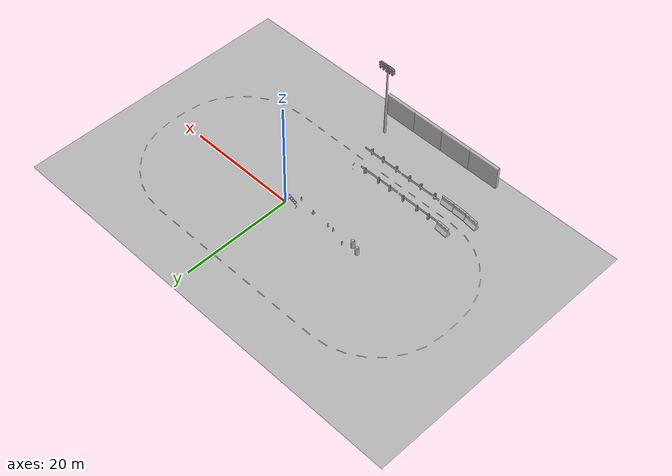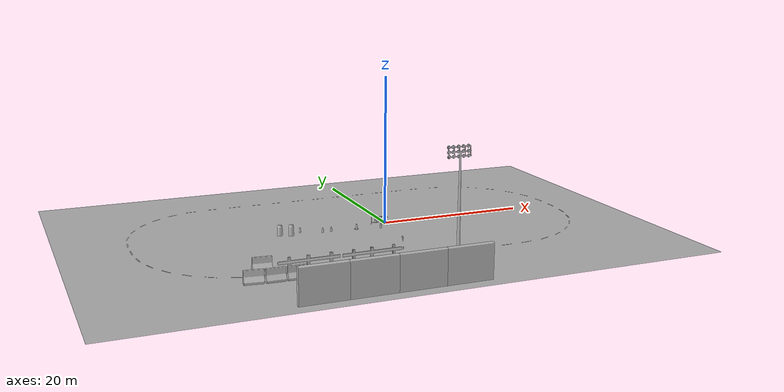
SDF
<sdf version="1.6">
 <world name="default">
  <model name="aws_robomaker_racetrack_CrashworthBucket_01_02">
   <link name="aws_CrashworthBucket_01::body">
    <inertial>
     <mass>5</mass>
     <inertia><ixx>1</ixx><ixy>0</ixy><ixz>0</ixz><iyy>1</iyy><iyz>0</iyz><izz>1</izz></inertia>
    </inertial>
    <visual name="visual">
     <geometry>
      <mesh>
       <uri>file://models/aws_robomaker_racetrack_CrashworthBucket_01/meshes/aws_CrashworthBucket_01_visual.DAE</uri>
      </mesh>
     </geometry>
     <material><shader type="pixel"><normal_map>__default__</normal_map></shader></material>
     <meta><layer>0</layer></meta>
    </visual>
    <collision name="collision_0">
     <geometry>
      <mesh>
       <uri>file://models/aws_robomaker_racetrack_CrashworthBucket_01/meshes/aws_CrashworthBucket_01_collision.DAE</uri>
       <scale>1 1 1</scale>
      </mesh>
     </geometry>
     <surface>
      <friction>
       <ode><mu>1</mu><mu2>1</mu2><fdir1>0 0 0</fdir1><slip1>0</slip1><slip2>0</slip2></ode>
       <torsional>
        <coefficient>1</coefficient>
        <patch_radius>0</patch_radius>
        <surface_radius>0</surface_radius>
        <use_patch_radius>1</use_patch_radius>
        <ode><slip>0</slip></ode>
       </torsional>
      </friction>
      <bounce><restitution_coefficient>0</restitution_coefficient><threshold>1e+06</threshold></bounce>
      <contact>
       <collide_without_contact>0</collide_without_contact>
       <collide_without_contact_bitmask>1</collide_without_contact_bitmask>
       <collide_bitmask>1</collide_bitmask>
       <ode>
        <soft_cfm>0</soft_cfm>
        <soft_erp>0.2</soft_erp>
        <kp>1e+13</kp>
        <kd>1</kd>
        <max_vel>0.01</max_vel>
        <min_depth>0</min_depth>
       </ode>
       <bullet>
        <split_impulse>1</split_impulse>
        <split_impulse_penetration_threshold>-0.01</split_impulse_penetration_threshold>
        <soft_cfm>0</soft_cfm>
        <soft_erp>0.2</soft_erp>
        <kp>1e+13</kp>
        <kd>1</kd>
       </bullet>
      </contact>
     </surface>
    </collision>
   </link>
   <static>1</static>
   <pose>-13.6708 -0.983538 0.054 0 -0 0</pose>
  </model>
  <model name="aws_robomaker_racetrack_CrashworthBucket_01_24">
   <link name="aws_CrashworthBucket_01::body">
    <inertial>
     <mass>5</mass>
     <inertia><ixx>1</ixx><ixy>0</ixy><ixz>0</ixz><iyy>1</iyy><iyz>0</iyz><izz>1</izz></inertia>
    </inertial>
    <visual name="visual">
     <geometry>
      <mesh>
       <uri>file://models/aws_robomaker_racetrack_CrashworthBucket_01/meshes/aws_CrashworthBucket_01_visual.DAE</uri>
      </mesh>
     </geometry>
     <material><shader type="pixel"><normal_map>__default__</normal_map></shader></material>
     <meta><layer>0</layer></meta>
    </visual>
    <collision name="collision_0">
     <geometry>
      <mesh>
       <uri>file://models/aws_robomaker_racetrack_CrashworthBucket_01/meshes/aws_CrashworthBucket_01_collision.DAE</uri>
       <scale>1 1 1</scale>
      </mesh>
     </geometry>
     <surface>
      <friction>
       <ode><mu>1</mu><mu2>1</mu2><fdir1>0 0 0</fdir1><slip1>0</slip1><slip2>0</slip2></ode>
       <torsional>
        <coefficient>1</coefficient>
        <patch_radius>0</patch_radius>
        <surface_radius>0</surface_radius>
        <use_patch_radius>1</use_patch_radius>
        <ode><slip>0</slip></ode>
       </torsional>
      </friction>
      <bounce><restitution_coefficient>0</restitution_coefficient><threshold>1e+06</threshold></bounce>
      <contact>
       <collide_without_contact>0</collide_without_contact>
       <collide_without_contact_bitmask>1</collide_without_contact_bitmask>
       <collide_bitmask>1</collide_bitmask>
       <ode>
        <soft_cfm>0</soft_cfm>
        <soft_erp>0.2</soft_erp>
        <kp>1e+13</kp>
        <kd>1</kd>
        <max_vel>0.01</max_vel>
        <min_depth>0</min_depth>
       </ode>
       <bullet>
        <split_impulse>1</split_impulse>
        <split_impulse_penetration_threshold>-0.01</split_impulse_penetration_threshold>
        <soft_cfm>0</soft_cfm>
        <soft_erp>0.2</soft_erp>
        <kp>1e+13</kp>
        <kd>1</kd>
       </bullet>
      </contact>
     </surface>
    </collision>
   </link>
   <static>1</static>
   <pose>-15.0558 -0.45872 0 0 -0 0</pose>
  </model>
  <model name="aws_robomaker_racetrack_Fence_01_04">
   <link name="aws_Fence_01::body">
    <inertial>
     <mass>5</mass>
     <inertia><ixx>1</ixx><ixy>0</ixy><ixz>0</ixz><iyy>1</iyy><iyz>0</iyz><izz>1</izz></inertia>
    </inertial>
    <visual name="visual">
     <geometry>
      <mesh><uri>file://models/aws_robomaker_racetrack_Fence_01/meshes/aws_Fence_01_visual.DAE</uri></mesh>
     </geometry>
     <material><shader type="pixel"><normal_map>__default__</normal_map></shader></material>
     <meta><layer>0</layer></meta>
    </visual>
    <collision name="collision_0">
     <geometry>
      <mesh>
       <uri>file://models/aws_robomaker_racetrack_Fence_01/meshes/aws_Fence_01_collision.DAE</uri>
       <scale>1 1 1</scale>
      </mesh>
     </geometry>
     <surface>
      <friction>
       <ode><mu>1</mu><mu2>1</mu2><fdir1>0 0 0</fdir1><slip1>0</slip1><slip2>0</slip2></ode>
       <torsional>
        <coefficient>1</coefficient>
        <patch_radius>0</patch_radius>
        <surface_radius>0</surface_radius>
        <use_patch_radius>1</use_patch_radius>
        <ode><slip>0</slip></ode>
       </torsional>
      </friction>
      <bounce><restitution_coefficient>0</restitution_coefficient><threshold>1e+06</threshold></bounce>
      <contact>
       <collide_without_contact>0</collide_without_contact>
       <collide_without_contact_bitmask>1</collide_without_contact_bitmask>
       <collide_bitmask>1</collide_bitmask>
       <ode>
        <soft_cfm>0</soft_cfm>
        <soft_erp>0.2</soft_erp>
        <kp>1e+13</kp>
        <kd>1</kd>
        <max_vel>0.01</max_vel>
        <min_depth>0</min_depth>
       </ode>
       <bullet>
        <split_impulse>1</split_impulse>
        <split_impulse_penetration_threshold>-0.01</split_impulse_penetration_threshold>
        <soft_cfm>0</soft_cfm>
        <soft_erp>0.2</soft_erp>
        <kp>1e+13</kp>
        <kd>1</kd>
       </bullet>
      </contact>
     </surface>
    </collision>
   </link>
   <static>1</static>
   <pose>-12.9904 -16.8572 0.054 0 0 -1.55861</pose>
  </model>
  <model name="aws_robomaker_racetrack_Fence_01_05">
   <link name="aws_Fence_01::body">
    <inertial>
     <mass>5</mass>
     <inertia><ixx>1</ixx><ixy>0</ixy><ixz>0</ixz><iyy>1</iyy><iyz>0</iyz><izz>1</izz></inertia>
    </inertial>
    <visual name="visual">
     <geometry>
      <mesh><uri>file://models/aws_robomaker_racetrack_Fence_01/meshes/aws_Fence_01_visual.DAE</uri></mesh>
     </geometry>
     <material><shader type="pixel"><normal_map>__default__</normal_map></shader></material>
     <meta><layer>0</layer></meta>
    </visual>
    <collision name="collision_0">
     <geometry>
      <mesh>
       <uri>file://models/aws_robomaker_racetrack_Fence_01/meshes/aws_Fence_01_collision.DAE</uri>
       <scale>1 1 1</scale>
      </mesh>
     </geometry>
     <surface>
      <friction>
       <ode><mu>1</mu><mu2>1</mu2><fdir1>0 0 0</fdir1><slip1>0</slip1><slip2>0</slip2></ode>
       <torsional>
        <coefficient>1</coefficient>
        <patch_radius>0</patch_radius>
        <surface_radius>0</surface_radius>
        <use_patch_radius>1</use_patch_radius>
        <ode><slip>0</slip></ode>
       </torsional>
      </friction>
      <bounce><restitution_coefficient>0</restitution_coefficient><threshold>1e+06</threshold></bounce>
      <contact>
       <collide_without_contact>0</collide_without_contact>
       <collide_without_contact_bitmask>1</collide_without_contact_bitmask>
       <collide_bitmask>1</collide_bitmask>
       <ode>
        <soft_cfm>0</soft_cfm>
        <soft_erp>0.2</soft_erp>
        <kp>1e+13</kp>
        <kd>1</kd>
        <max_vel>0.01</max_vel>
        <min_depth>0</min_depth>
       </ode>
       <bullet>
        <split_impulse>1</split_impulse>
        <split_impulse_penetration_threshold>-0.01</split_impulse_penetration_threshold>
        <soft_cfm>0</soft_cfm>
        <soft_erp>0.2</soft_erp>
        <kp>1e+13</kp>
        <kd>1</kd>
       </bullet>
      </contact>
     </surface>
    </collision>
   </link>
   <static>1</static>
   <pose>-4.88088 -16.8495 0.054 0 0 -1.57272</pose>
  </model>
  <model name="aws_robomaker_racetrack_Fence_01_08">
   <link name="aws_Fence_01::body">
    <inertial>
     <mass>5</mass>
     <inertia><ixx>1</ixx><ixy>0</ixy><ixz>0</ixz><iyy>1</iyy><iyz>0</iyz><izz>1</izz></inertia>
    </inertial>
    <visual name="visual">
     <geometry>
      <mesh><uri>file://models/aws_robomaker_racetrack_Fence_01/meshes/aws_Fence_01_visual.DAE</uri></mesh>
     </geometry>
     <material><shader type="pixel"><normal_map>__default__</normal_map></shader></material>
     <meta><layer>0</layer></meta>
    </visual>
    <collision name="collision_0">
     <geometry>
      <mesh>
       <uri>file://models/aws_robomaker_racetrack_Fence_01/meshes/aws_Fence_01_collision.DAE</uri>
       <scale>1 1 1</scale>
      </mesh>
     </geometry>
     <surface>
      <friction>
       <ode><mu>1</mu><mu2>1</mu2><fdir1>0 0 0</fdir1><slip1>0</slip1><slip2>0</slip2></ode>
       <torsional>
        <coefficient>1</coefficient>
        <patch_radius>0</patch_radius>
        <surface_radius>0</surface_radius>
        <use_patch_radius>1</use_patch_radius>
        <ode><slip>0</slip></ode>
       </torsional>
      </friction>
      <bounce><restitution_coefficient>0</restitution_coefficient><threshold>1e+06</threshold></bounce>
      <contact>
       <collide_without_contact>0</collide_without_contact>
       <collide_without_contact_bitmask>1</collide_without_contact_bitmask>
       <collide_bitmask>1</collide_bitmask>
       <ode>
        <soft_cfm>0</soft_cfm>
        <soft_erp>0.2</soft_erp>
        <kp>1e+13</kp>
        <kd>1</kd>
        <max_vel>0.01</max_vel>
        <min_depth>0</min_depth>
       </ode>
       <bullet>
        <split_impulse>1</split_impulse>
        <split_impulse_penetration_threshold>-0.01</split_impulse_penetration_threshold>
        <soft_cfm>0</soft_cfm>
        <soft_erp>0.2</soft_erp>
        <kp>1e+13</kp>
        <kd>1</kd>
       </bullet>
      </contact>
     </surface>
    </collision>
   </link>
   <static>1</static>
   <pose>-15.529 -13.1346 0.054 0 -0 1.57158</pose>
  </model>
  <model name="aws_robomaker_racetrack_Fence_01_09">
   <link name="aws_Fence_01::body">
    <inertial>
     <mass>5</mass>
     <inertia><ixx>1</ixx><ixy>0</ixy><ixz>0</ixz><iyy>1</iyy><iyz>0</iyz><izz>1</izz></inertia>
    </inertial>
    <visual name="visual">
     <geometry>
      <mesh><uri>file://models/aws_robomaker_racetrack_Fence_01/meshes/aws_Fence_01_visual.DAE</uri></mesh>
     </geometry>
     <material><shader type="pixel"><normal_map>__default__</normal_map></shader></material>
     <meta><layer>0</layer></meta>
    </visual>
    <collision name="collision_0">
     <geometry>
      <mesh>
       <uri>file://models/aws_robomaker_racetrack_Fence_01/meshes/aws_Fence_01_collision.DAE</uri>
       <scale>1 1 1</scale>
      </mesh>
     </geometry>
     <surface>
      <friction>
       <ode><mu>1</mu><mu2>1</mu2><fdir1>0 0 0</fdir1><slip1>0</slip1><slip2>0</slip2></ode>
       <torsional>
        <coefficient>1</coefficient>
        <patch_radius>0</patch_radius>
        <surface_radius>0</surface_radius>
        <use_patch_radius>1</use_patch_radius>
        <ode><slip>0</slip></ode>
       </torsional>
      </friction>
      <bounce><restitution_coefficient>0</restitution_coefficient><threshold>1e+06</threshold></bounce>
      <contact>
       <collide_without_contact>0</collide_without_contact>
       <collide_without_contact_bitmask>1</collide_without_contact_bitmask>
       <collide_bitmask>1</collide_bitmask>
       <ode>
        <soft_cfm>0</soft_cfm>
        <soft_erp>0.2</soft_erp>
        <kp>1e+13</kp>
        <kd>1</kd>
        <max_vel>0.01</max_vel>
        <min_depth>0</min_depth>
       </ode>
       <bullet>
        <split_impulse>1</split_impulse>
        <split_impulse_penetration_threshold>-0.01</split_impulse_penetration_threshold>
        <soft_cfm>0</soft_cfm>
        <soft_erp>0.2</soft_erp>
        <kp>1e+13</kp>
        <kd>1</kd>
       </bullet>
      </contact>
     </surface>
    </collision>
   </link>
   <static>1</static>
   <pose>-7.39105 -13.1346 0.054651 0 -0 1.5804</pose>
  </model>
  <model name="aws_robomaker_racetrack_Fence_02_00">
   <link name="aws_Fence_02::body">
    <inertial>
     <mass>5</mass>
     <inertia><ixx>9.6</ixx><ixy>0</ixy><ixz>0</ixz><iyy>8.2</iyy><iyz>0</iyz><izz>2.1</izz></inertia>
    </inertial>
    <visual name="visual">
     <geometry>
      <mesh><uri>file://models/aws_robomaker_racetrack_Fence_02/meshes/aws_Fence_02_visual.DAE</uri></mesh>
     </geometry>
     <material><shader type="pixel"><normal_map>__default__</normal_map></shader></material>
     <meta><layer>0</layer></meta>
    </visual>
    <collision name="collision_0">
     <geometry>
      <mesh>
       <uri>file://models/aws_robomaker_racetrack_Fence_02/meshes/aws_Fence_02_collision.DAE</uri>
       <scale>1 1 1</scale>
      </mesh>
     </geometry>
     <surface>
      <friction>
       <ode><mu>1</mu><mu2>1</mu2><fdir1>0 0 0</fdir1><slip1>0</slip1><slip2>0</slip2></ode>
       <torsional>
        <coefficient>1</coefficient>
        <patch_radius>0</patch_radius>
        <surface_radius>0</surface_radius>
        <use_patch_radius>1</use_patch_radius>
        <ode><slip>0</slip></ode>
       </torsional>
      </friction>
      <bounce><restitution_coefficient>0</restitution_coefficient><threshold>1e+06</threshold></bounce>
      <contact>
       <collide_without_contact>0</collide_without_contact>
       <collide_without_contact_bitmask>1</collide_without_contact_bitmask>
       <collide_bitmask>1</collide_bitmask>
      </contact>
     </surface>
    </collision>
   </link>
   <static>1</static>
   <pose>-1.05264 -0.5238 0.040535 -0.008781 0.086261 -1.77545</pose>
  </model>
  <model name="aws_robomaker_racetrack_StonePier_01_00">
   <link name="aws_StonePier_01::body">
    <inertial>
     <mass>10</mass>
     <inertia><ixx>0</ixx><ixy>0</ixy><ixz>0</ixz><iyy>0</iyy><iyz>0</iyz><izz>0</izz></inertia>
    </inertial>
    <visual name="visual">
     <geometry>
      <mesh><uri>file://models/aws_robomaker_racetrack_StonePier_01/meshes/aws_StonePier_01_visual.DAE</uri></mesh>
     </geometry>
     <material><shader type="pixel"><normal_map>__default__</normal_map></shader></material>
     <meta><layer>0</layer></meta>
    </visual>
    <collision name="collision_0">
     <geometry>
      <mesh>
       <uri>file://models/aws_robomaker_racetrack_StonePier_01/meshes/aws_StonePier_01_collision.DAE</uri>
       <scale>1 1 1</scale>
      </mesh>
     </geometry>
     <surface>
      <friction>
       <ode><mu>1</mu><mu2>1</mu2><fdir1>0 0 0</fdir1><slip1>0</slip1><slip2>0</slip2></ode>
       <torsional>
        <coefficient>1</coefficient>
        <patch_radius>0</patch_radius>
        <surface_radius>0</surface_radius>
        <use_patch_radius>1</use_patch_radius>
        <ode><slip>0</slip></ode>
       </torsional>
      </friction>
      <bounce><restitution_coefficient>0</restitution_coefficient><threshold>1e+06</threshold></bounce>
      <contact>
       <collide_without_contact>0</collide_without_contact>
       <collide_without_contact_bitmask>1</collide_without_contact_bitmask>
       <collide_bitmask>1</collide_bitmask>
       <ode>
        <soft_cfm>0</soft_cfm>
        <soft_erp>0.2</soft_erp>
        <kp>1e+13</kp>
        <kd>1</kd>
        <max_vel>0.01</max_vel>
        <min_depth>0</min_depth>
       </ode>
       <bullet>
        <split_impulse>1</split_impulse>
        <split_impulse_penetration_threshold>-0.01</split_impulse_penetration_threshold>
        <soft_cfm>0</soft_cfm>
        <soft_erp>0.2</soft_erp>
        <kp>1e+13</kp>
        <kd>1</kd>
       </bullet>
      </contact>
     </surface>
    </collision>
   </link>
   <static>1</static>
   <pose>-21.1732 -12.7799 0.054 0 0 -0.086667</pose>
  </model>
  <model name="aws_robomaker_racetrack_StonePier_01_40">
   <link name="aws_StonePier_01::body">
    <inertial>
     <mass>10</mass>
     <inertia><ixx>0</ixx><ixy>0</ixy><ixz>0</ixz><iyy>0</iyy><iyz>0</iyz><izz>0</izz></inertia>
    </inertial>
    <visual name="visual">
     <geometry>
      <mesh><uri>file://models/aws_robomaker_racetrack_StonePier_01/meshes/aws_StonePier_01_visual.DAE</uri></mesh>
     </geometry>
     <material><shader type="pixel"><normal_map>__default__</normal_map></shader></material>
     <meta><layer>0</layer></meta>
    </visual>
    <collision name="collision_0">
     <geometry>
      <mesh>
       <uri>file://models/aws_robomaker_racetrack_StonePier_01/meshes/aws_StonePier_01_collision.DAE</uri>
       <scale>1 1 1</scale>
      </mesh>
     </geometry>
     <surface>
      <friction>
       <ode><mu>1</mu><mu2>1</mu2><fdir1>0 0 0</fdir1><slip1>0</slip1><slip2>0</slip2></ode>
       <torsional>
        <coefficient>1</coefficient>
        <patch_radius>0</patch_radius>
        <surface_radius>0</surface_radius>
        <use_patch_radius>1</use_patch_radius>
        <ode><slip>0</slip></ode>
       </torsional>
      </friction>
      <bounce><restitution_coefficient>0</restitution_coefficient><threshold>1e+06</threshold></bounce>
      <contact>
       <collide_without_contact>0</collide_without_contact>
       <collide_without_contact_bitmask>1</collide_without_contact_bitmask>
       <collide_bitmask>1</collide_bitmask>
       <ode>
        <soft_cfm>0</soft_cfm>
        <soft_erp>0.2</soft_erp>
        <kp>1e+13</kp>
        <kd>1</kd>
        <max_vel>0.01</max_vel>
        <min_depth>0</min_depth>
       </ode>
       <bullet>
        <split_impulse>1</split_impulse>
        <split_impulse_penetration_threshold>-0.01</split_impulse_penetration_threshold>
        <soft_cfm>0</soft_cfm>
        <soft_erp>0.2</soft_erp>
        <kp>1e+13</kp>
        <kd>1</kd>
       </bullet>
      </contact>
     </surface>
    </collision>
   </link>
   <static>1</static>
   <pose>-18.3212 -17.1986 0.054 0 0 -0.000165</pose>
  </model>
  <model name="aws_robomaker_racetrack_StonePier_01_68">
   <link name="aws_StonePier_01::body">
    <inertial>
     <mass>10</mass>
     <inertia><ixx>0</ixx><ixy>0</ixy><ixz>0</ixz><iyy>0</iyy><iyz>0</iyz><izz>0</izz></inertia>
    </inertial>
    <visual name="visual">
     <geometry>
      <mesh><uri>file://models/aws_robomaker_racetrack_StonePier_01/meshes/aws_StonePier_01_visual.DAE</uri></mesh>
     </geometry>
     <material><shader type="pixel"><normal_map>__default__</normal_map></shader></material>
     <meta><layer>0</layer></meta>
    </visual>
    <collision name="collision_0">
     <geometry>
      <mesh>
       <uri>file://models/aws_robomaker_racetrack_StonePier_01/meshes/aws_StonePier_01_collision.DAE</uri>
       <scale>1 1 1</scale>
      </mesh>
     </geometry>
     <surface>
      <friction>
       <ode><mu>1</mu><mu2>1</mu2><fdir1>0 0 0</fdir1><slip1>0</slip1><slip2>0</slip2></ode>
       <torsional>
        <coefficient>1</coefficient>
        <patch_radius>0</patch_radius>
        <surface_radius>0</surface_radius>
        <use_patch_radius>1</use_patch_radius>
        <ode><slip>0</slip></ode>
       </torsional>
      </friction>
      <bounce><restitution_coefficient>0</restitution_coefficient><threshold>1e+06</threshold></bounce>
      <contact>
       <collide_without_contact>0</collide_without_contact>
       <collide_without_contact_bitmask>1</collide_without_contact_bitmask>
       <collide_bitmask>1</collide_bitmask>
       <ode>
        <soft_cfm>0</soft_cfm>
        <soft_erp>0.2</soft_erp>
        <kp>1e+13</kp>
        <kd>1</kd>
        <max_vel>0.01</max_vel>
        <min_depth>0</min_depth>
       </ode>
       <bullet>
        <split_impulse>1</split_impulse>
        <split_impulse_penetration_threshold>-0.01</split_impulse_penetration_threshold>
        <soft_cfm>0</soft_cfm>
        <soft_erp>0.2</soft_erp>
        <kp>1e+13</kp>
        <kd>1</kd>
       </bullet>
      </contact>
     </surface>
    </collision>
   </link>
   <static>1</static>
   <pose>-20.8526 -17.1365 0.054 -0 0.00036 -0.016586</pose>
  </model>
  <model name="aws_robomaker_racetrack_StonePier_01_69">
   <link name="aws_StonePier_01::body">
    <inertial>
     <mass>10</mass>
     <inertia><ixx>0</ixx><ixy>0</ixy><ixz>0</ixz><iyy>0</iyy><iyz>0</iyz><izz>0</izz></inertia>
    </inertial>
    <visual name="visual">
     <geometry>
      <mesh><uri>file://models/aws_robomaker_racetrack_StonePier_01/meshes/aws_StonePier_01_visual.DAE</uri></mesh>
     </geometry>
     <material><shader type="pixel"><normal_map>__default__</normal_map></shader></material>
     <meta><layer>0</layer></meta>
    </visual>
    <collision name="collision_0">
     <geometry>
      <mesh>
       <uri>file://models/aws_robomaker_racetrack_StonePier_01/meshes/aws_StonePier_01_collision.DAE</uri>
       <scale>1 1 1</scale>
      </mesh>
     </geometry>
     <surface>
      <friction>
       <ode><mu>1</mu><mu2>1</mu2><fdir1>0 0 0</fdir1><slip1>0</slip1><slip2>0</slip2></ode>
       <torsional>
        <coefficient>1</coefficient>
        <patch_radius>0</patch_radius>
        <surface_radius>0</surface_radius>
        <use_patch_radius>1</use_patch_radius>
        <ode><slip>0</slip></ode>
       </torsional>
      </friction>
      <bounce><restitution_coefficient>0</restitution_coefficient><threshold>1e+06</threshold></bounce>
      <contact>
       <collide_without_contact>0</collide_without_contact>
       <collide_without_contact_bitmask>1</collide_without_contact_bitmask>
       <collide_bitmask>1</collide_bitmask>
       <ode>
        <soft_cfm>0</soft_cfm>
        <soft_erp>0.2</soft_erp>
        <kp>1e+13</kp>
        <kd>1</kd>
        <max_vel>0.01</max_vel>
        <min_depth>0</min_depth>
       </ode>
       <bullet>
        <split_impulse>1</split_impulse>
        <split_impulse_penetration_threshold>-0.01</split_impulse_penetration_threshold>
        <soft_cfm>0</soft_cfm>
        <soft_erp>0.2</soft_erp>
        <kp>1e+13</kp>
        <kd>1</kd>
       </bullet>
      </contact>
     </surface>
    </collision>
   </link>
   <static>1</static>
   <pose>-23.3756 -16.9024 0.054 0 0 -0.119704</pose>
  </model>
  <model name="aws_robomaker_racetrack_StopSign_01_00">
   <link name="aws_StopSign_01::body">
    <inertial>
     <mass>2</mass>
     <inertia><ixx>1</ixx><ixy>0</ixy><ixz>0</ixz><iyy>1</iyy><iyz>0</iyz><izz>1</izz></inertia>
    </inertial>
    <visual name="visual">
     <geometry>
      <mesh><uri>file://models/aws_robomaker_racetrack_StopSign_01/meshes/aws_StopSign_01_visual.DAE</uri></mesh>
     </geometry>
     <material><shader type="pixel"><normal_map>__default__</normal_map></shader></material>
     <meta><layer>0</layer></meta>
    </visual>
    <collision name="collision_0">
     <geometry>
      <mesh>
       <uri>file://models/aws_robomaker_racetrack_StopSign_01/meshes/aws_StopSign_01_collision.DAE</uri>
       <scale>1 1 1</scale>
      </mesh>
     </geometry>
     <surface>
      <friction>
       <ode><mu>1</mu><mu2>1</mu2><fdir1>0 0 0</fdir1><slip1>0</slip1><slip2>0</slip2></ode>
       <torsional>
        <coefficient>1</coefficient>
        <patch_radius>0</patch_radius>
        <surface_radius>0</surface_radius>
        <use_patch_radius>1</use_patch_radius>
        <ode><slip>0</slip></ode>
       </torsional>
      </friction>
      <bounce><restitution_coefficient>0</restitution_coefficient><threshold>1e+06</threshold></bounce>
      <contact>
       <collide_without_contact>0</collide_without_contact>
       <collide_without_contact_bitmask>1</collide_without_contact_bitmask>
       <collide_bitmask>1</collide_bitmask>
       <ode>
        <soft_cfm>0</soft_cfm>
        <soft_erp>0.2</soft_erp>
        <kp>1e+13</kp>
        <kd>1</kd>
        <max_vel>0.01</max_vel>
        <min_depth>0</min_depth>
       </ode>
       <bullet>
        <split_impulse>1</split_impulse>
        <split_impulse_penetration_threshold>-0.01</split_impulse_penetration_threshold>
        <soft_cfm>0</soft_cfm>
        <soft_erp>0.2</soft_erp>
        <kp>1e+13</kp>
        <kd>1</kd>
       </bullet>
      </contact>
     </surface>
    </collision>
   </link>
   <static>1</static>
   <pose>-2.7487 -12.1054 0.000775 0.075944 0.005053 -1.56731</pose>
  </model>
  <model name="aws_robomaker_racetrack_Trackline_01_00">
   <link name="aws_Trackline_01::body">
    <inertial>
     <mass>0.5</mass>
     <inertia><ixx>1</ixx><ixy>0</ixy><ixz>0</ixz><iyy>1</iyy><iyz>0</iyz><izz>1</izz></inertia>
    </inertial>
    <visual name="visual">
     <geometry>
      <mesh><uri>file://models/aws_robomaker_racetrack_Trackline_01/meshes/aws_Trackline_01_visual.DAE</uri></mesh>
     </geometry>
     <material><shader type="pixel"><normal_map>__default__</normal_map></shader></material>
     <meta><layer>0</layer></meta>
    </visual>
    <collision name="collision_0">
     <geometry>
      <mesh>
       <uri>file://models/aws_robomaker_racetrack_Trackline_01/meshes/aws_Trackline_01_collision.DAE</uri>
       <scale>1 1 1</scale>
      </mesh>
     </geometry>
     <surface>
      <friction>
       <ode><mu>1</mu><mu2>1</mu2><fdir1>0 0 0</fdir1><slip1>0</slip1><slip2>0</slip2></ode>
       <torsional>
        <coefficient>1</coefficient>
        <patch_radius>0</patch_radius>
        <surface_radius>0</surface_radius>
        <use_patch_radius>1</use_patch_radius>
        <ode><slip>0</slip></ode>
       </torsional>
      </friction>
      <bounce><restitution_coefficient>0</restitution_coefficient><threshold>1e+06</threshold></bounce>
      <contact>
       <collide_without_contact>0</collide_without_contact>
       <collide_without_contact_bitmask>1</collide_without_contact_bitmask>
       <collide_bitmask>0</collide_bitmask>
       <ode>
        <soft_cfm>0</soft_cfm>
        <soft_erp>0.2</soft_erp>
        <kp>1e+13</kp>
        <kd>1</kd>
        <max_vel>0.01</max_vel>
        <min_depth>0</min_depth>
       </ode>
       <bullet>
        <split_impulse>1</split_impulse>
        <split_impulse_penetration_threshold>-0.01</split_impulse_penetration_threshold>
        <soft_cfm>0</soft_cfm>
        <soft_erp>0.2</soft_erp>
        <kp>1e+13</kp>
        <kd>1</kd>
       </bullet>
      </contact>
     </surface>
    </collision>
   </link>
   <static>1</static>
   <pose>-4.24539 0 0.102 0 -0 0</pose>
  </model>
  <model name="aws_robomaker_racetrack_TrafficCone_01_00">
   <link name="aws_TrafficCone_01::body">
    <inertial>
     <mass>0.5</mass>
     <inertia><ixx>1</ixx><ixy>0</ixy><ixz>0</ixz><iyy>1</iyy><iyz>0</iyz><izz>1</izz></inertia>
    </inertial>
    <visual name="visual">
     <geometry>
      <mesh>
       <uri>file://models/aws_robomaker_racetrack_TrafficCone_01/meshes/aws_TrafficCone_01_visual.DAE</uri>
      </mesh>
     </geometry>
     <material><shader type="pixel"><normal_map>__default__</normal_map></shader></material>
     <meta><layer>0</layer></meta>
    </visual>
    <collision name="collision_0">
     <geometry>
      <mesh>
       <uri>file://models/aws_robomaker_racetrack_TrafficCone_01/meshes/aws_TrafficCone_01_coliision.DAE</uri>
       <scale>1 1 1</scale>
      </mesh>
     </geometry>
     <surface>
      <friction>
       <ode><mu>1</mu><mu2>1</mu2><fdir1>0 0 0</fdir1><slip1>0</slip1><slip2>0</slip2></ode>
       <torsional>
        <coefficient>1</coefficient>
        <patch_radius>0</patch_radius>
        <surface_radius>0</surface_radius>
        <use_patch_radius>1</use_patch_radius>
        <ode><slip>0</slip></ode>
       </torsional>
      </friction>
      <bounce><restitution_coefficient>0</restitution_coefficient><threshold>1e+06</threshold></bounce>
      <contact>
       <collide_without_contact>0</collide_without_contact>
       <collide_without_contact_bitmask>1</collide_without_contact_bitmask>
       <collide_bitmask>1</collide_bitmask>
       <ode>
        <soft_cfm>0</soft_cfm>
        <soft_erp>0.2</soft_erp>
        <kp>1e+13</kp>
        <kd>1</kd>
        <max_vel>0.01</max_vel>
        <min_depth>0</min_depth>
       </ode>
       <bullet>
        <split_impulse>1</split_impulse>
        <split_impulse_penetration_threshold>-0.01</split_impulse_penetration_threshold>
        <soft_cfm>0</soft_cfm>
        <soft_erp>0.2</soft_erp>
        <kp>1e+13</kp>
        <kd>1</kd>
       </bullet>
      </contact>
     </surface>
    </collision>
   </link>
   <static>1</static>
   <pose>-9.37917 -1.12327 0 0 -0 0</pose>
  </model>
  <model name="aws_robomaker_racetrack_TrafficCone_01_01">
   <link name="aws_TrafficCone_01::body">
    <inertial>
     <mass>0.5</mass>
     <inertia><ixx>1</ixx><ixy>0</ixy><ixz>0</ixz><iyy>1</iyy><iyz>0</iyz><izz>1</izz></inertia>
    </inertial>
    <visual name="visual">
     <geometry>
      <mesh>
       <uri>file://models/aws_robomaker_racetrack_TrafficCone_01/meshes/aws_TrafficCone_01_visual.DAE</uri>
      </mesh>
     </geometry>
     <material><shader type="pixel"><normal_map>__default__</normal_map></shader></material>
     <meta><layer>0</layer></meta>
    </visual>
    <collision name="collision_0">
     <geometry>
      <mesh>
       <uri>file://models/aws_robomaker_racetrack_TrafficCone_01/meshes/aws_TrafficCone_01_coliision.DAE</uri>
       <scale>1 1 1</scale>
      </mesh>
     </geometry>
     <surface>
      <friction>
       <ode><mu>1</mu><mu2>1</mu2><fdir1>0 0 0</fdir1><slip1>0</slip1><slip2>0</slip2></ode>
       <torsional>
        <coefficient>1</coefficient>
        <patch_radius>0</patch_radius>
        <surface_radius>0</surface_radius>
        <use_patch_radius>1</use_patch_radius>
        <ode><slip>0</slip></ode>
       </torsional>
      </friction>
      <bounce><restitution_coefficient>0</restitution_coefficient><threshold>1e+06</threshold></bounce>
      <contact>
       <collide_without_contact>0</collide_without_contact>
       <collide_without_contact_bitmask>1</collide_without_contact_bitmask>
       <collide_bitmask>1</collide_bitmask>
       <ode>
        <soft_cfm>0</soft_cfm>
        <soft_erp>0.2</soft_erp>
        <kp>1e+13</kp>
        <kd>1</kd>
        <max_vel>0.01</max_vel>
        <min_depth>0</min_depth>
       </ode>
       <bullet>
        <split_impulse>1</split_impulse>
        <split_impulse_penetration_threshold>-0.01</split_impulse_penetration_threshold>
        <soft_cfm>0</soft_cfm>
        <soft_erp>0.2</soft_erp>
        <kp>1e+13</kp>
        <kd>1</kd>
       </bullet>
      </contact>
     </surface>
    </collision>
   </link>
   <static>1</static>
   <pose>-12.1926 -0.169504 0 0 -0 0</pose>
  </model>
  <model name="aws_robomaker_racetrack_TrafficCone_01_03">
   <link name="aws_TrafficCone_01::body">
    <inertial>
     <mass>0.5</mass>
     <inertia><ixx>1</ixx><ixy>0</ixy><ixz>0</ixz><iyy>1</iyy><iyz>0</iyz><izz>1</izz></inertia>
    </inertial>
    <visual name="visual">
     <geometry>
      <mesh>
       <uri>file://models/aws_robomaker_racetrack_TrafficCone_01/meshes/aws_TrafficCone_01_visual.DAE</uri>
      </mesh>
     </geometry>
     <material><shader type="pixel"><normal_map>__default__</normal_map></shader></material>
     <meta><layer>0</layer></meta>
    </visual>
    <collision name="collision_0">
     <geometry>
      <mesh>
       <uri>file://models/aws_robomaker_racetrack_TrafficCone_01/meshes/aws_TrafficCone_01_coliision.DAE</uri>
       <scale>1 1 1</scale>
      </mesh>
     </geometry>
     <surface>
      <friction>
       <ode><mu>1</mu><mu2>1</mu2><fdir1>0 0 0</fdir1><slip1>0</slip1><slip2>0</slip2></ode>
       <torsional>
        <coefficient>1</coefficient>
        <patch_radius>0</patch_radius>
        <surface_radius>0</surface_radius>
        <use_patch_radius>1</use_patch_radius>
        <ode><slip>0</slip></ode>
       </torsional>
      </friction>
      <bounce><restitution_coefficient>0</restitution_coefficient><threshold>1e+06</threshold></bounce>
      <contact>
       <collide_without_contact>0</collide_without_contact>
       <collide_without_contact_bitmask>1</collide_without_contact_bitmask>
       <collide_bitmask>1</collide_bitmask>
       <ode>
        <soft_cfm>0</soft_cfm>
        <soft_erp>0.2</soft_erp>
        <kp>1e+13</kp>
        <kd>1</kd>
        <max_vel>0.01</max_vel>
        <min_depth>0</min_depth>
       </ode>
       <bullet>
        <split_impulse>1</split_impulse>
        <split_impulse_penetration_threshold>-0.01</split_impulse_penetration_threshold>
        <soft_cfm>0</soft_cfm>
        <soft_erp>0.2</soft_erp>
        <kp>1e+13</kp>
        <kd>1</kd>
       </bullet>
      </contact>
     </surface>
    </collision>
   </link>
   <static>1</static>
   <pose>-8.2042 -1.16806 0 0 -0 0</pose>
  </model>
  <model name="aws_robomaker_racetrack_TrafficCone_01_08">
   <link name="aws_TrafficCone_01::body">
    <inertial>
     <mass>0.5</mass>
     <inertia><ixx>1</ixx><ixy>0</ixy><ixz>0</ixz><iyy>1</iyy><iyz>0</iyz><izz>1</izz></inertia>
    </inertial>
    <visual name="visual">
     <geometry>
      <mesh>
       <uri>file://models/aws_robomaker_racetrack_TrafficCone_01/meshes/aws_TrafficCone_01_visual.DAE</uri>
      </mesh>
     </geometry>
     <material><shader type="pixel"><normal_map>__default__</normal_map></shader></material>
     <meta><layer>0</layer></meta>
    </visual>
    <collision name="collision_0">
     <geometry>
      <mesh>
       <uri>file://models/aws_robomaker_racetrack_TrafficCone_01/meshes/aws_TrafficCone_01_coliision.DAE</uri>
       <scale>1 1 1</scale>
      </mesh>
     </geometry>
     <surface>
      <friction>
       <ode><mu>1</mu><mu2>1</mu2><fdir1>0 0 0</fdir1><slip1>0</slip1><slip2>0</slip2></ode>
       <torsional>
        <coefficient>1</coefficient>
        <patch_radius>0</patch_radius>
        <surface_radius>0</surface_radius>
        <use_patch_radius>1</use_patch_radius>
        <ode><slip>0</slip></ode>
       </torsional>
      </friction>
      <bounce><restitution_coefficient>0</restitution_coefficient><threshold>1e+06</threshold></bounce>
      <contact>
       <collide_without_contact>0</collide_without_contact>
       <collide_without_contact_bitmask>1</collide_without_contact_bitmask>
       <collide_bitmask>1</collide_bitmask>
       <ode>
        <soft_cfm>0</soft_cfm>
        <soft_erp>0.2</soft_erp>
        <kp>1e+13</kp>
        <kd>1</kd>
        <max_vel>0.01</max_vel>
        <min_depth>0</min_depth>
       </ode>
       <bullet>
        <split_impulse>1</split_impulse>
        <split_impulse_penetration_threshold>-0.01</split_impulse_penetration_threshold>
        <soft_cfm>0</soft_cfm>
        <soft_erp>0.2</soft_erp>
        <kp>1e+13</kp>
        <kd>1</kd>
       </bullet>
      </contact>
     </surface>
    </collision>
   </link>
   <static>1</static>
   <pose>-1.47869 -2.04792 0 0 -0 0</pose>
  </model>
  <model name="aws_robomaker_racetrack_TrafficCone_01_10">
   <link name="aws_TrafficCone_01::body">
    <inertial>
     <mass>0.5</mass>
     <inertia><ixx>1</ixx><ixy>0</ixy><ixz>0</ixz><iyy>1</iyy><iyz>0</iyz><izz>1</izz></inertia>
    </inertial>
    <visual name="visual">
     <geometry>
      <mesh>
       <uri>file://models/aws_robomaker_racetrack_TrafficCone_01/meshes/aws_TrafficCone_01_visual.DAE</uri>
      </mesh>
     </geometry>
     <material><shader type="pixel"><normal_map>__default__</normal_map></shader></material>
     <meta><layer>0</layer></meta>
    </visual>
    <collision name="collision_0">
     <geometry>
      <mesh>
       <uri>file://models/aws_robomaker_racetrack_TrafficCone_01/meshes/aws_TrafficCone_01_coliision.DAE</uri>
       <scale>1 1 1</scale>
      </mesh>
     </geometry>
     <surface>
      <friction>
       <ode><mu>1</mu><mu2>1</mu2><fdir1>0 0 0</fdir1><slip1>0</slip1><slip2>0</slip2></ode>
       <torsional>
        <coefficient>1</coefficient>
        <patch_radius>0</patch_radius>
        <surface_radius>0</surface_radius>
        <use_patch_radius>1</use_patch_radius>
        <ode><slip>0</slip></ode>
       </torsional>
      </friction>
      <bounce><restitution_coefficient>0</restitution_coefficient><threshold>1e+06</threshold></bounce>
      <contact>
       <collide_without_contact>0</collide_without_contact>
       <collide_without_contact_bitmask>1</collide_without_contact_bitmask>
       <collide_bitmask>1</collide_bitmask>
       <ode>
        <soft_cfm>0</soft_cfm>
        <soft_erp>0.2</soft_erp>
        <kp>1e+13</kp>
        <kd>1</kd>
        <max_vel>0.01</max_vel>
        <min_depth>0</min_depth>
       </ode>
       <bullet>
        <split_impulse>1</split_impulse>
        <split_impulse_penetration_threshold>-0.01</split_impulse_penetration_threshold>
        <soft_cfm>0</soft_cfm>
        <soft_erp>0.2</soft_erp>
        <kp>1e+13</kp>
        <kd>1</kd>
       </bullet>
      </contact>
     </surface>
    </collision>
   </link>
   <static>1</static>
   <pose>-4.72102 -1.43929 0.054 0 -0 0</pose>
  </model>
  <model name="aws_robomaker_racetrack_Ground_01_00">
   <link name="aws_Ground_01::body">
    <inertial>
     <mass>10000</mass>
     <inertia><ixx>0</ixx><ixy>0</ixy><ixz>0</ixz><iyy>0</iyy><iyz>0</iyz><izz>0</izz></inertia>
    </inertial>
    <visual name="visual">
     <geometry>
      <mesh>
       <uri>file://models/aws_robomaker_racetrack_Ground_01/meshes/aws_Ground_01_visual.DAE</uri>
       <scale>0.09 0.06 0.2</scale>
      </mesh>
     </geometry>
     <material><shader type="pixel"><normal_map>__default__</normal_map></shader></material>
     <meta><layer>0</layer></meta>
    </visual>
    <collision name="collision_0">
     <geometry>
      <mesh>
       <uri>file://models/aws_robomaker_racetrack_Ground_01/meshes/aws_Ground_01_collision.DAE</uri>
       <scale>0.2 0.2 0.2</scale>
      </mesh>
     </geometry>
     <surface>
      <friction>
       <ode><mu>1</mu><mu2>1</mu2><fdir1>0 0 0</fdir1><slip1>0</slip1><slip2>0</slip2></ode>
       <torsional>
        <coefficient>1</coefficient>
        <patch_radius>0</patch_radius>
        <surface_radius>0</surface_radius>
        <use_patch_radius>1</use_patch_radius>
        <ode><slip>0</slip></ode>
       </torsional>
      </friction>
      <bounce><restitution_coefficient>0</restitution_coefficient><threshold>1e+06</threshold></bounce>
      <contact>
       <collide_without_contact>0</collide_without_contact>
       <collide_without_contact_bitmask>1</collide_without_contact_bitmask>
       <collide_bitmask>65535</collide_bitmask>
       <ode>
        <soft_cfm>0</soft_cfm>
        <soft_erp>0.2</soft_erp>
        <kp>1e+13</kp>
        <kd>1</kd>
        <max_vel>0.01</max_vel>
        <min_depth>0</min_depth>
       </ode>
       <bullet>
        <split_impulse>1</split_impulse>
        <split_impulse_penetration_threshold>-0.01</split_impulse_penetration_threshold>
        <soft_cfm>0</soft_cfm>
        <soft_erp>0.2</soft_erp>
        <kp>1e+13</kp>
        <kd>1</kd>
       </bullet>
      </contact>
     </surface>
    </collision>
   </link>
   <static>1</static>
   <pose>-4.9 -2 0.05 0 -0 0</pose>
  </model>
  <model name="aws_robomaker_racetrack_Light_01_00">
   <link name="aws_Light_01::body">
    <inertial>
     <mass>100</mass>
     <inertia><ixx>1</ixx><ixy>0</ixy><ixz>0</ixz><iyy>1</iyy><iyz>0</iyz><izz>1</izz></inertia>
    </inertial>
    <visual name="visual">
     <geometry>
      <mesh><uri>file://models/aws_robomaker_racetrack_Light_01/meshes/aws_Light_01_visual.DAE</uri></mesh>
     </geometry>
     <material><shader type="pixel"><normal_map>__default__</normal_map></shader></material>
     <meta><layer>0</layer></meta>
    </visual>
    <collision name="collision_0">
     <geometry>
      <mesh>
       <uri>file://models/aws_robomaker_racetrack_Light_01/meshes/aws_Light_01_collision.DAE</uri>
       <scale>1 1 1</scale>
      </mesh>
     </geometry>
     <surface>
      <friction>
       <ode><mu>1</mu><mu2>1</mu2><fdir1>0 0 0</fdir1><slip1>0</slip1><slip2>0</slip2></ode>
       <torsional>
        <coefficient>1</coefficient>
        <patch_radius>0</patch_radius>
        <surface_radius>0</surface_radius>
        <use_patch_radius>1</use_patch_radius>
        <ode><slip>0</slip></ode>
       </torsional>
      </friction>
      <bounce><restitution_coefficient>0</restitution_coefficient><threshold>1e+06</threshold></bounce>
      <contact>
       <collide_without_contact>0</collide_without_contact>
       <collide_without_contact_bitmask>1</collide_without_contact_bitmask>
       <collide_bitmask>1</collide_bitmask>
       <ode>
        <soft_cfm>0</soft_cfm>
        <soft_erp>0.2</soft_erp>
        <kp>1e+13</kp>
        <kd>1</kd>
        <max_vel>0.01</max_vel>
        <min_depth>0</min_depth>
       </ode>
       <bullet>
        <split_impulse>1</split_impulse>
        <split_impulse_penetration_threshold>-0.01</split_impulse_penetration_threshold>
        <soft_cfm>0</soft_cfm>
        <soft_erp>0.2</soft_erp>
        <kp>1e+13</kp>
        <kd>1</kd>
       </bullet>
      </contact>
     </surface>
    </collision>
   </link>
   <static>1</static>
   <pose>-0.355802 -21.7691 0 0 -0 0</pose>
  </model>
  <model name="aws_robomaker_racetrack_Wall_01_12">
   <link name="aws_Wall_01::body">
    <inertial>
     <mass>500</mass>
     <inertia><ixx>1</ixx><ixy>0</ixy><ixz>0</ixz><iyy>1</iyy><iyz>0</iyz><izz>1</izz></inertia>
    </inertial>
    <visual name="visual">
     <geometry>
      <mesh>
       <uri>file://models/aws_robomaker_racetrack_Wall_01/meshes/aws_Wall_01_visual.DAE</uri>
       <scale>2.59853 2.59853 2.59853</scale>
      </mesh>
     </geometry>
     <material><shader type="pixel"><normal_map>__default__</normal_map></shader></material>
     <meta><layer>1</layer></meta>
    </visual>
    <collision name="collision_0">
     <geometry>
      <mesh>
       <uri>file://models/aws_robomaker_racetrack_Wall_01/meshes/aws_Wall_01_collision.DAE</uri>
       <scale>2.59853 2.59853 2.59853</scale>
      </mesh>
     </geometry>
     <surface>
      <friction>
       <ode><mu>1</mu><mu2>1</mu2><fdir1>0 0 0</fdir1><slip1>0</slip1><slip2>0</slip2></ode>
       <torsional>
        <coefficient>1</coefficient>
        <patch_radius>0</patch_radius>
        <surface_radius>0</surface_radius>
        <use_patch_radius>1</use_patch_radius>
        <ode><slip>0</slip></ode>
       </torsional>
      </friction>
      <bounce><restitution_coefficient>0</restitution_coefficient><threshold>1e+06</threshold></bounce>
      <contact>
       <collide_without_contact>0</collide_without_contact>
       <collide_without_contact_bitmask>1</collide_without_contact_bitmask>
       <collide_bitmask>1</collide_bitmask>
       <ode>
        <soft_cfm>0</soft_cfm>
        <soft_erp>0.2</soft_erp>
        <kp>1e+13</kp>
        <kd>1</kd>
        <max_vel>0.01</max_vel>
        <min_depth>0</min_depth>
       </ode>
       <bullet>
        <split_impulse>1</split_impulse>
        <split_impulse_penetration_threshold>-0.01</split_impulse_penetration_threshold>
        <soft_cfm>0</soft_cfm>
        <soft_erp>0.2</soft_erp>
        <kp>1e+13</kp>
        <kd>1</kd>
       </bullet>
      </contact>
     </surface>
    </collision>
   </link>
   <static>1</static>
   <pose>-18.1656 -25.5178 0 0 -0 0</pose>
  </model>
  <model name="aws_robomaker_racetrack_Wall_01_13">
   <link name="aws_Wall_01::body">
    <inertial>
     <mass>500</mass>
     <inertia><ixx>1</ixx><ixy>0</ixy><ixz>0</ixz><iyy>1</iyy><iyz>0</iyz><izz>1</izz></inertia>
    </inertial>
    <visual name="visual">
     <geometry>
      <mesh>
       <uri>file://models/aws_robomaker_racetrack_Wall_01/meshes/aws_Wall_01_visual.DAE</uri>
       <scale>2.59853 2.59853 2.59853</scale>
      </mesh>
     </geometry>
     <material><shader type="pixel"><normal_map>__default__</normal_map></shader></material>
     <meta><layer>1</layer></meta>
    </visual>
    <collision name="collision_0">
     <geometry>
      <mesh>
       <uri>file://models/aws_robomaker_racetrack_Wall_01/meshes/aws_Wall_01_collision.DAE</uri>
       <scale>2.59853 2.59853 2.59853</scale>
      </mesh>
     </geometry>
     <surface>
      <friction>
       <ode><mu>1</mu><mu2>1</mu2><fdir1>0 0 0</fdir1><slip1>0</slip1><slip2>0</slip2></ode>
       <torsional>
        <coefficient>1</coefficient>
        <patch_radius>0</patch_radius>
        <surface_radius>0</surface_radius>
        <use_patch_radius>1</use_patch_radius>
        <ode><slip>0</slip></ode>
       </torsional>
      </friction>
      <bounce><restitution_coefficient>0</restitution_coefficient><threshold>1e+06</threshold></bounce>
      <contact>
       <collide_without_contact>0</collide_without_contact>
       <collide_without_contact_bitmask>1</collide_without_contact_bitmask>
       <collide_bitmask>1</collide_bitmask>
       <ode>
        <soft_cfm>0</soft_cfm>
        <soft_erp>0.2</soft_erp>
        <kp>1e+13</kp>
        <kd>1</kd>
        <max_vel>0.01</max_vel>
        <min_depth>0</min_depth>
       </ode>
       <bullet>
        <split_impulse>1</split_impulse>
        <split_impulse_penetration_threshold>-0.01</split_impulse_penetration_threshold>
        <soft_cfm>0</soft_cfm>
        <soft_erp>0.2</soft_erp>
        <kp>1e+13</kp>
        <kd>1</kd>
       </bullet>
      </contact>
     </surface>
    </collision>
   </link>
   <static>1</static>
   <pose>-12.3608 -25.513 0 0 -0 0</pose>
  </model>
  <model name="aws_robomaker_racetrack_Wall_01_14">
   <link name="aws_Wall_01::body">
    <inertial>
     <mass>500</mass>
     <inertia><ixx>1</ixx><ixy>0</ixy><ixz>0</ixz><iyy>1</iyy><iyz>0</iyz><izz>1</izz></inertia>
    </inertial>
    <visual name="visual">
     <geometry>
      <mesh>
       <uri>file://models/aws_robomaker_racetrack_Wall_01/meshes/aws_Wall_01_visual.DAE</uri>
       <scale>2.59853 2.59853 2.59853</scale>
      </mesh>
     </geometry>
     <material><shader type="pixel"><normal_map>__default__</normal_map></shader></material>
     <meta><layer>1</layer></meta>
    </visual>
    <collision name="collision_0">
     <geometry>
      <mesh>
       <uri>file://models/aws_robomaker_racetrack_Wall_01/meshes/aws_Wall_01_collision.DAE</uri>
       <scale>2.59853 2.59853 2.59853</scale>
      </mesh>
     </geometry>
     <surface>
      <friction>
       <ode><mu>1</mu><mu2>1</mu2><fdir1>0 0 0</fdir1><slip1>0</slip1><slip2>0</slip2></ode>
       <torsional>
        <coefficient>1</coefficient>
        <patch_radius>0</patch_radius>
        <surface_radius>0</surface_radius>
        <use_patch_radius>1</use_patch_radius>
        <ode><slip>0</slip></ode>
       </torsional>
      </friction>
      <bounce><restitution_coefficient>0</restitution_coefficient><threshold>1e+06</threshold></bounce>
      <contact>
       <collide_without_contact>0</collide_without_contact>
       <collide_without_contact_bitmask>1</collide_without_contact_bitmask>
       <collide_bitmask>1</collide_bitmask>
       <ode>
        <soft_cfm>0</soft_cfm>
        <soft_erp>0.2</soft_erp>
        <kp>1e+13</kp>
        <kd>1</kd>
        <max_vel>0.01</max_vel>
        <min_depth>0</min_depth>
       </ode>
       <bullet>
        <split_impulse>1</split_impulse>
        <split_impulse_penetration_threshold>-0.01</split_impulse_penetration_threshold>
        <soft_cfm>0</soft_cfm>
        <soft_erp>0.2</soft_erp>
        <kp>1e+13</kp>
        <kd>1</kd>
       </bullet>
      </contact>
     </surface>
    </collision>
   </link>
   <static>1</static>
   <pose>-6.53417 -25.5081 0 0 -0 0</pose>
  </model>
  <model name="aws_robomaker_racetrack_Wall_01_15">
   <link name="aws_Wall_01::body">
    <inertial>
     <mass>500</mass>
     <inertia><ixx>1</ixx><ixy>0</ixy><ixz>0</ixz><iyy>1</iyy><iyz>0</iyz><izz>1</izz></inertia>
    </inertial>
    <visual name="visual">
     <geometry>
      <mesh>
       <uri>file://models/aws_robomaker_racetrack_Wall_01/meshes/aws_Wall_01_visual.DAE</uri>
       <scale>2.59853 2.59853 2.59853</scale>
      </mesh>
     </geometry>
     <material><shader type="pixel"><normal_map>__default__</normal_map></shader></material>
     <meta><layer>1</layer></meta>
    </visual>
    <collision name="collision_0">
     <geometry>
      <mesh>
       <uri>file://models/aws_robomaker_racetrack_Wall_01/meshes/aws_Wall_01_collision.DAE</uri>
       <scale>2.59853 2.59853 2.59853</scale>
      </mesh>
     </geometry>
     <surface>
      <friction>
       <ode><mu>1</mu><mu2>1</mu2><fdir1>0 0 0</fdir1><slip1>0</slip1><slip2>0</slip2></ode>
       <torsional>
        <coefficient>1</coefficient>
        <patch_radius>0</patch_radius>
        <surface_radius>0</surface_radius>
        <use_patch_radius>1</use_patch_radius>
        <ode><slip>0</slip></ode>
       </torsional>
      </friction>
      <bounce><restitution_coefficient>0</restitution_coefficient><threshold>1e+06</threshold></bounce>
      <contact>
       <collide_without_contact>0</collide_without_contact>
       <collide_without_contact_bitmask>1</collide_without_contact_bitmask>
       <collide_bitmask>1</collide_bitmask>
       <ode>
        <soft_cfm>0</soft_cfm>
        <soft_erp>0.2</soft_erp>
        <kp>1e+13</kp>
        <kd>1</kd>
        <max_vel>0.01</max_vel>
        <min_depth>0</min_depth>
       </ode>
       <bullet>
        <split_impulse>1</split_impulse>
        <split_impulse_penetration_threshold>-0.01</split_impulse_penetration_threshold>
        <soft_cfm>0</soft_cfm>
        <soft_erp>0.2</soft_erp>
        <kp>1e+13</kp>
        <kd>1</kd>
       </bullet>
      </contact>
     </surface>
    </collision>
   </link>
   <static>1</static>
   <pose>-0.701372 -25.5056 0 0 -0 0</pose>
  </model>
  <model name="ground_plane">
   <pose>0 0 -1.29145e+07 0 -0 0</pose>
   <link name="link">
    <pose>0 0 -1 0 -0 0</pose>
    <inertial>
     <inertia><ixx>1</ixx><ixy>0</ixy><ixz>0</ixz><iyy>1</iyy><iyz>0</iyz><izz>1</izz></inertia>
     <mass>1</mass>
    </inertial>
   </link>
  </model>
 </world>
</sdf>
